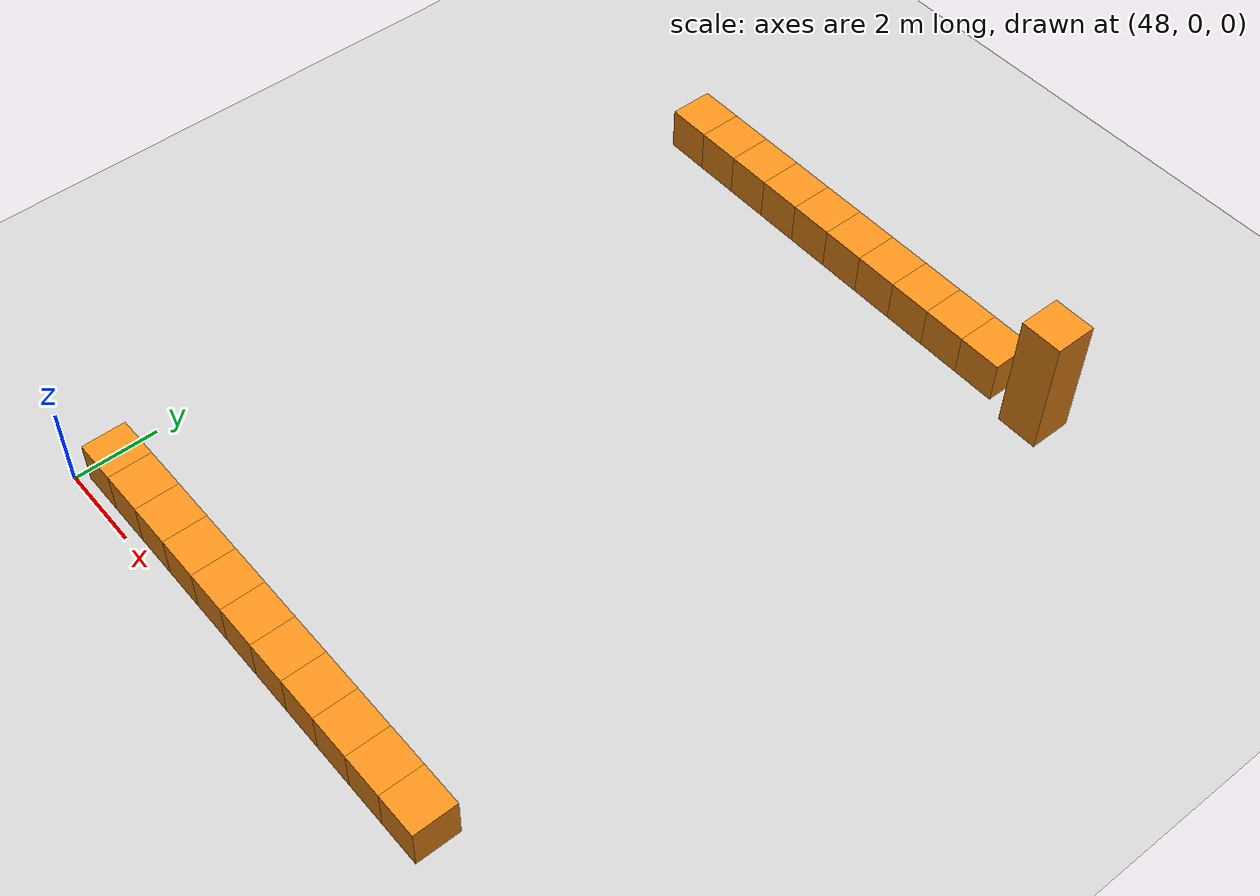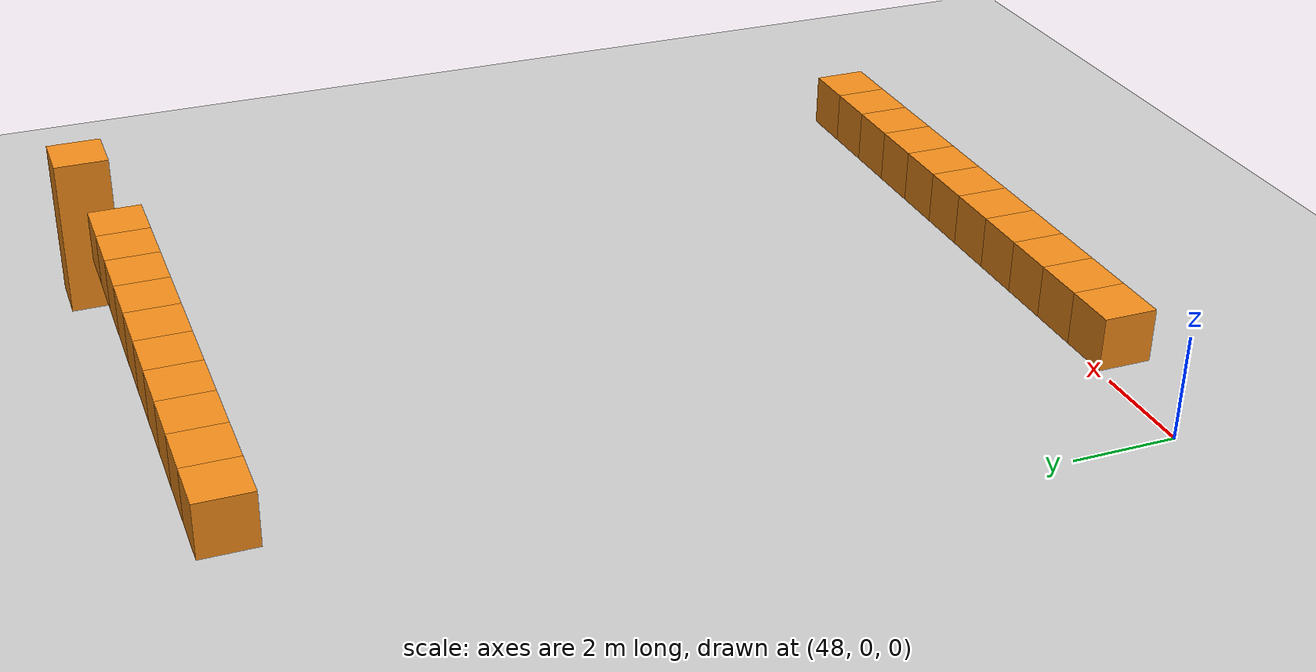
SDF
<sdf version="1.6">
 <world name="default">
  <include><uri>model://ground_plane</uri></include>
  <model name="unit_box_141">
   <pose>49.50     0.50     1.50 0 0 0</pose>
   <static>1</static>
   <link name="link">
    <inertial>
     <mass>5000</mass>
     <inertia><ixx>200</ixx><ixy>0</ixy><ixz>0</ixz><iyy>200</iyy><iyz>0</iyz><izz>200</izz></inertia>
    </inertial>
    <collision name="collision"><geometry><box><size>1 1 1</size></box></geometry></collision>
    <visual name="visual">
     <geometry><box><size>1 1 1</size></box></geometry>
     <material>
      <script><name>Gazebo/Orange</name><uri>file://media/materials/scripts/gazebo.material</uri></script>
     </material>
    </visual>
   </link>
  </model>
  <model name="unit_box_142">
   <pose>49.50    16.00     1.50 0 0 0</pose>
   <static>1</static>
   <link name="link">
    <inertial>
     <mass>5000</mass>
     <inertia><ixx>200</ixx><ixy>0</ixy><ixz>0</ixz><iyy>200</iyy><iyz>0</iyz><izz>200</izz></inertia>
    </inertial>
    <collision name="collision"><geometry><box><size>1 1 1</size></box></geometry></collision>
    <visual name="visual">
     <geometry><box><size>1 1 1</size></box></geometry>
     <material>
      <script><name>Gazebo/Orange</name><uri>file://media/materials/scripts/gazebo.material</uri></script>
     </material>
    </visual>
   </link>
  </model>
  <model name="unit_box_144">
   <pose>50.50     0.50     1.50 0 0 0</pose>
   <static>1</static>
   <link name="link">
    <inertial>
     <mass>5000</mass>
     <inertia><ixx>200</ixx><ixy>0</ixy><ixz>0</ixz><iyy>200</iyy><iyz>0</iyz><izz>200</izz></inertia>
    </inertial>
    <collision name="collision"><geometry><box><size>1 1 1</size></box></geometry></collision>
    <visual name="visual">
     <geometry><box><size>1 1 1</size></box></geometry>
     <material>
      <script><name>Gazebo/Orange</name><uri>file://media/materials/scripts/gazebo.material</uri></script>
     </material>
    </visual>
   </link>
  </model>
  <model name="unit_box_145">
   <pose>50.50    16.00     1.50 0 0 0</pose>
   <static>1</static>
   <link name="link">
    <inertial>
     <mass>5000</mass>
     <inertia><ixx>200</ixx><ixy>0</ixy><ixz>0</ixz><iyy>200</iyy><iyz>0</iyz><izz>200</izz></inertia>
    </inertial>
    <collision name="collision"><geometry><box><size>1 1 1</size></box></geometry></collision>
    <visual name="visual">
     <geometry><box><size>1 1 1</size></box></geometry>
     <material>
      <script><name>Gazebo/Orange</name><uri>file://media/materials/scripts/gazebo.material</uri></script>
     </material>
    </visual>
   </link>
  </model>
  <model name="unit_box_147">
   <pose>51.50     0.50     1.50 0 0 0</pose>
   <static>1</static>
   <link name="link">
    <inertial>
     <mass>5000</mass>
     <inertia><ixx>200</ixx><ixy>0</ixy><ixz>0</ixz><iyy>200</iyy><iyz>0</iyz><izz>200</izz></inertia>
    </inertial>
    <collision name="collision"><geometry><box><size>1 1 1</size></box></geometry></collision>
    <visual name="visual">
     <geometry><box><size>1 1 1</size></box></geometry>
     <material>
      <script><name>Gazebo/Orange</name><uri>file://media/materials/scripts/gazebo.material</uri></script>
     </material>
    </visual>
   </link>
  </model>
  <model name="unit_box_148">
   <pose>51.50    16.00     1.50 0 0 0</pose>
   <static>1</static>
   <link name="link">
    <inertial>
     <mass>5000</mass>
     <inertia><ixx>200</ixx><ixy>0</ixy><ixz>0</ixz><iyy>200</iyy><iyz>0</iyz><izz>200</izz></inertia>
    </inertial>
    <collision name="collision"><geometry><box><size>1 1 1</size></box></geometry></collision>
    <visual name="visual">
     <geometry><box><size>1 1 1</size></box></geometry>
     <material>
      <script><name>Gazebo/Orange</name><uri>file://media/materials/scripts/gazebo.material</uri></script>
     </material>
    </visual>
   </link>
  </model>
  <model name="unit_box_150">
   <pose>52.50     0.50     1.50 0 0 0</pose>
   <static>1</static>
   <link name="link">
    <inertial>
     <mass>5000</mass>
     <inertia><ixx>200</ixx><ixy>0</ixy><ixz>0</ixz><iyy>200</iyy><iyz>0</iyz><izz>200</izz></inertia>
    </inertial>
    <collision name="collision"><geometry><box><size>1 1 1</size></box></geometry></collision>
    <visual name="visual">
     <geometry><box><size>1 1 1</size></box></geometry>
     <material>
      <script><name>Gazebo/Orange</name><uri>file://media/materials/scripts/gazebo.material</uri></script>
     </material>
    </visual>
   </link>
  </model>
  <model name="unit_box_151">
   <pose>52.50    16.00     1.50 0 0 0</pose>
   <static>1</static>
   <link name="link">
    <inertial>
     <mass>5000</mass>
     <inertia><ixx>200</ixx><ixy>0</ixy><ixz>0</ixz><iyy>200</iyy><iyz>0</iyz><izz>200</izz></inertia>
    </inertial>
    <collision name="collision"><geometry><box><size>1 1 1</size></box></geometry></collision>
    <visual name="visual">
     <geometry><box><size>1 1 1</size></box></geometry>
     <material>
      <script><name>Gazebo/Orange</name><uri>file://media/materials/scripts/gazebo.material</uri></script>
     </material>
    </visual>
   </link>
  </model>
  <model name="unit_box_153">
   <pose>53.50     0.50     1.50 0 0 0</pose>
   <static>1</static>
   <link name="link">
    <inertial>
     <mass>5000</mass>
     <inertia><ixx>200</ixx><ixy>0</ixy><ixz>0</ixz><iyy>200</iyy><iyz>0</iyz><izz>200</izz></inertia>
    </inertial>
    <collision name="collision"><geometry><box><size>1 1 1</size></box></geometry></collision>
    <visual name="visual">
     <geometry><box><size>1 1 1</size></box></geometry>
     <material>
      <script><name>Gazebo/Orange</name><uri>file://media/materials/scripts/gazebo.material</uri></script>
     </material>
    </visual>
   </link>
  </model>
  <model name="unit_box_154">
   <pose>53.50    16.00     1.50 0 0 0</pose>
   <static>1</static>
   <link name="link">
    <inertial>
     <mass>5000</mass>
     <inertia><ixx>200</ixx><ixy>0</ixy><ixz>0</ixz><iyy>200</iyy><iyz>0</iyz><izz>200</izz></inertia>
    </inertial>
    <collision name="collision"><geometry><box><size>1 1 1</size></box></geometry></collision>
    <visual name="visual">
     <geometry><box><size>1 1 1</size></box></geometry>
     <material>
      <script><name>Gazebo/Orange</name><uri>file://media/materials/scripts/gazebo.material</uri></script>
     </material>
    </visual>
   </link>
  </model>
  <model name="unit_box_156">
   <pose>54.50     0.50     1.50 0 0 0</pose>
   <static>1</static>
   <link name="link">
    <inertial>
     <mass>5000</mass>
     <inertia><ixx>200</ixx><ixy>0</ixy><ixz>0</ixz><iyy>200</iyy><iyz>0</iyz><izz>200</izz></inertia>
    </inertial>
    <collision name="collision"><geometry><box><size>1 1 1</size></box></geometry></collision>
    <visual name="visual">
     <geometry><box><size>1 1 1</size></box></geometry>
     <material>
      <script><name>Gazebo/Orange</name><uri>file://media/materials/scripts/gazebo.material</uri></script>
     </material>
    </visual>
   </link>
  </model>
  <model name="unit_box_157">
   <pose>54.50    16.00     1.50 0 0 0</pose>
   <static>1</static>
   <link name="link">
    <inertial>
     <mass>5000</mass>
     <inertia><ixx>200</ixx><ixy>0</ixy><ixz>0</ixz><iyy>200</iyy><iyz>0</iyz><izz>200</izz></inertia>
    </inertial>
    <collision name="collision"><geometry><box><size>1 1 1</size></box></geometry></collision>
    <visual name="visual">
     <geometry><box><size>1 1 1</size></box></geometry>
     <material>
      <script><name>Gazebo/Orange</name><uri>file://media/materials/scripts/gazebo.material</uri></script>
     </material>
    </visual>
   </link>
  </model>
  <model name="unit_box_159">
   <pose>55.50     0.50     1.50 0 0 0</pose>
   <static>1</static>
   <link name="link">
    <inertial>
     <mass>5000</mass>
     <inertia><ixx>200</ixx><ixy>0</ixy><ixz>0</ixz><iyy>200</iyy><iyz>0</iyz><izz>200</izz></inertia>
    </inertial>
    <collision name="collision"><geometry><box><size>1 1 1</size></box></geometry></collision>
    <visual name="visual">
     <geometry><box><size>1 1 1</size></box></geometry>
     <material>
      <script><name>Gazebo/Orange</name><uri>file://media/materials/scripts/gazebo.material</uri></script>
     </material>
    </visual>
   </link>
  </model>
  <model name="unit_box_160">
   <pose>55.50    16.00     1.50 0 0 0</pose>
   <static>1</static>
   <link name="link">
    <inertial>
     <mass>5000</mass>
     <inertia><ixx>200</ixx><ixy>0</ixy><ixz>0</ixz><iyy>200</iyy><iyz>0</iyz><izz>200</izz></inertia>
    </inertial>
    <collision name="collision"><geometry><box><size>1 1 1</size></box></geometry></collision>
    <visual name="visual">
     <geometry><box><size>1 1 1</size></box></geometry>
     <material>
      <script><name>Gazebo/Orange</name><uri>file://media/materials/scripts/gazebo.material</uri></script>
     </material>
    </visual>
   </link>
  </model>
  <model name="unit_box_162">
   <pose>56.50     0.50     1.50 0 0 0</pose>
   <static>1</static>
   <link name="link">
    <inertial>
     <mass>5000</mass>
     <inertia><ixx>200</ixx><ixy>0</ixy><ixz>0</ixz><iyy>200</iyy><iyz>0</iyz><izz>200</izz></inertia>
    </inertial>
    <collision name="collision"><geometry><box><size>1 1 1</size></box></geometry></collision>
    <visual name="visual">
     <geometry><box><size>1 1 1</size></box></geometry>
     <material>
      <script><name>Gazebo/Orange</name><uri>file://media/materials/scripts/gazebo.material</uri></script>
     </material>
    </visual>
   </link>
  </model>
  <model name="unit_box_163">
   <pose>56.50    16.00     1.50 0 0 0</pose>
   <static>1</static>
   <link name="link">
    <inertial>
     <mass>5000</mass>
     <inertia><ixx>200</ixx><ixy>0</ixy><ixz>0</ixz><iyy>200</iyy><iyz>0</iyz><izz>200</izz></inertia>
    </inertial>
    <collision name="collision"><geometry><box><size>1 1 1</size></box></geometry></collision>
    <visual name="visual">
     <geometry><box><size>1 1 1</size></box></geometry>
     <material>
      <script><name>Gazebo/Orange</name><uri>file://media/materials/scripts/gazebo.material</uri></script>
     </material>
    </visual>
   </link>
  </model>
  <model name="unit_box_165">
   <pose>57.50     0.50     1.50 0 0 0</pose>
   <static>1</static>
   <link name="link">
    <inertial>
     <mass>5000</mass>
     <inertia><ixx>200</ixx><ixy>0</ixy><ixz>0</ixz><iyy>200</iyy><iyz>0</iyz><izz>200</izz></inertia>
    </inertial>
    <collision name="collision"><geometry><box><size>1 1 1</size></box></geometry></collision>
    <visual name="visual">
     <geometry><box><size>1 1 1</size></box></geometry>
     <material>
      <script><name>Gazebo/Orange</name><uri>file://media/materials/scripts/gazebo.material</uri></script>
     </material>
    </visual>
   </link>
  </model>
  <model name="unit_box_166">
   <pose>57.50    16.00     1.50 0 0 0</pose>
   <static>1</static>
   <link name="link">
    <inertial>
     <mass>5000</mass>
     <inertia><ixx>200</ixx><ixy>0</ixy><ixz>0</ixz><iyy>200</iyy><iyz>0</iyz><izz>200</izz></inertia>
    </inertial>
    <collision name="collision"><geometry><box><size>1 1 1</size></box></geometry></collision>
    <visual name="visual">
     <geometry><box><size>1 1 1</size></box></geometry>
     <material>
      <script><name>Gazebo/Orange</name><uri>file://media/materials/scripts/gazebo.material</uri></script>
     </material>
    </visual>
   </link>
  </model>
  <model name="unit_box_168">
   <pose>58.50     0.50     1.50 0 0 0</pose>
   <static>1</static>
   <link name="link">
    <inertial>
     <mass>5000</mass>
     <inertia><ixx>200</ixx><ixy>0</ixy><ixz>0</ixz><iyy>200</iyy><iyz>0</iyz><izz>200</izz></inertia>
    </inertial>
    <collision name="collision"><geometry><box><size>1 1 1</size></box></geometry></collision>
    <visual name="visual">
     <geometry><box><size>1 1 1</size></box></geometry>
     <material>
      <script><name>Gazebo/Orange</name><uri>file://media/materials/scripts/gazebo.material</uri></script>
     </material>
    </visual>
   </link>
  </model>
  <model name="unit_box_169">
   <pose>58.50    16.00     1.50 0 0 0</pose>
   <static>1</static>
   <link name="link">
    <inertial>
     <mass>5000</mass>
     <inertia><ixx>200</ixx><ixy>0</ixy><ixz>0</ixz><iyy>200</iyy><iyz>0</iyz><izz>200</izz></inertia>
    </inertial>
    <collision name="collision"><geometry><box><size>1 1 1</size></box></geometry></collision>
    <visual name="visual">
     <geometry><box><size>1 1 1</size></box></geometry>
     <material>
      <script><name>Gazebo/Orange</name><uri>file://media/materials/scripts/gazebo.material</uri></script>
     </material>
    </visual>
   </link>
  </model>
  <model name="unit_box_171">
   <pose>59.50     0.50     1.50 0 0 0</pose>
   <static>1</static>
   <link name="link">
    <inertial>
     <mass>5000</mass>
     <inertia><ixx>200</ixx><ixy>0</ixy><ixz>0</ixz><iyy>200</iyy><iyz>0</iyz><izz>200</izz></inertia>
    </inertial>
    <collision name="collision"><geometry><box><size>1 1 1</size></box></geometry></collision>
    <visual name="visual">
     <geometry><box><size>1 1 1</size></box></geometry>
     <material>
      <script><name>Gazebo/Orange</name><uri>file://media/materials/scripts/gazebo.material</uri></script>
     </material>
    </visual>
   </link>
  </model>
  <model name="unit_box_172">
   <pose>59.50    16.50     1.50 0 0 0</pose>
   <static>1</static>
   <link name="link">
    <inertial>
     <mass>5000</mass>
     <inertia><ixx>200</ixx><ixy>0</ixy><ixz>0</ixz><iyy>200</iyy><iyz>0</iyz><izz>200</izz></inertia>
    </inertial>
    <collision name="collision"><geometry><box><size>1 1 3</size></box></geometry></collision>
    <visual name="visual">
     <geometry><box><size>1 1 3</size></box></geometry>
     <material>
      <script><name>Gazebo/Orange</name><uri>file://media/materials/scripts/gazebo.material</uri></script>
     </material>
    </visual>
   </link>
  </model>
 </world>
</sdf>
